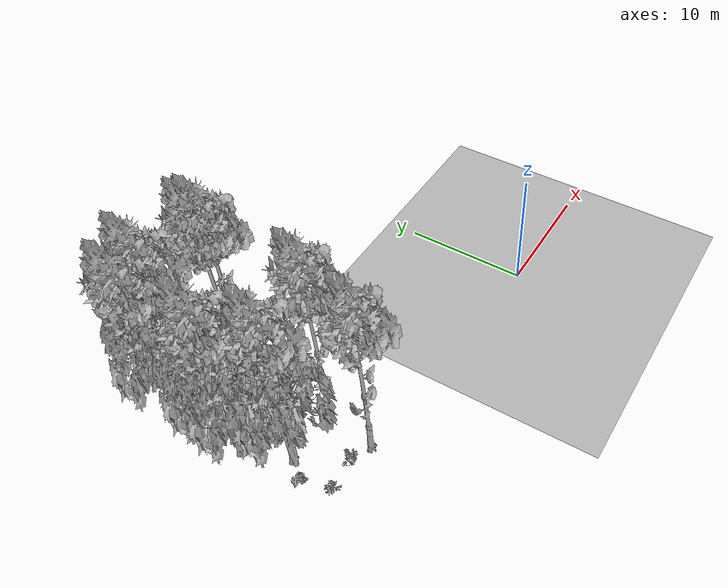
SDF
<sdf version="1.7">
 <world name="default">
  <model name="ground_plane">
   <static>1</static>
   <link name="link">
    <collision name="collision">
     <pose>-50 0 0 0 -0 0</pose>
     <geometry><plane><normal>0 0 1</normal><size>80 80</size></plane></geometry>
     <surface><contact><ode><min_depth>0.01</min_depth><max_vel>0</max_vel></ode></contact></surface>
    </collision>
    <visual name="grass">
     <cast_shadows>0</cast_shadows>
     <geometry>
      <mesh>
       <scale>0.46714285714285714 0.46714285714285714 0.1</scale>
       <uri>file://grass_plane/meshes/grass_plane.dae</uri>
      </mesh>
     </geometry>
    </visual>
   </link>
  </model>
  <model name="Tree 52">
   <static>1</static>
   <pose>-24.714791484448142 7.553677453470357 0 1.57079 -0 0</pose>
   <link name="link">
    <collision name="collision">
     <geometry><mesh><scale>3.5 5 3.5</scale><uri>model://tree_2/meshes/tree_2.obj</uri></mesh></geometry>
    </collision>
    <visual name="visual">
     <geometry><mesh><scale>3.5 5 3.5</scale><uri>model://tree_2/meshes/tree_2.obj</uri></mesh></geometry>
    </visual>
   </link>
  </model>
  <model name="Tree 88">
   <static>1</static>
   <pose>-24.508640064983393 14.888545816246861 0 1.57079 -0 0</pose>
   <link name="link">
    <collision name="collision">
     <geometry><mesh><scale>3.5 5 3.5</scale><uri>model://tree_9/meshes/tree_9.obj</uri></mesh></geometry>
    </collision>
    <visual name="visual">
     <geometry><mesh><scale>3.5 5 3.5</scale><uri>model://tree_9/meshes/tree_9.obj</uri></mesh></geometry>
    </visual>
   </link>
  </model>
  <model name="Tree 98">
   <static>1</static>
   <pose>-17.695097133960413 14.428805163919556 0 1.57079 -0 0</pose>
   <link name="link">
    <collision name="collision">
     <geometry><mesh><scale>3.5 5 3.5</scale><uri>model://tree_9/meshes/tree_9.obj</uri></mesh></geometry>
    </collision>
    <visual name="visual">
     <geometry><mesh><scale>3.5 5 3.5</scale><uri>model://tree_9/meshes/tree_9.obj</uri></mesh></geometry>
    </visual>
   </link>
  </model>
  <model name="Tree 255">
   <static>1</static>
   <pose>-23.138152905241846 5.744494449845597 0 1.57079 -0 0</pose>
   <link name="link">
    <collision name="collision">
     <geometry><mesh><scale>3.5 5 3.5</scale><uri>model://tree_9/meshes/tree_9.obj</uri></mesh></geometry>
    </collision>
    <visual name="visual">
     <geometry><mesh><scale>3.5 5 3.5</scale><uri>model://tree_9/meshes/tree_9.obj</uri></mesh></geometry>
    </visual>
   </link>
  </model>
  <model name="Tree 311">
   <static>1</static>
   <pose>-19.591139233166675 1.5883215922639948 0 1.57079 -0 0</pose>
   <link name="link">
    <collision name="collision">
     <geometry><mesh><scale>3.5 5 3.5</scale><uri>model://tree_9/meshes/tree_9.obj</uri></mesh></geometry>
    </collision>
    <visual name="visual">
     <geometry><mesh><scale>3.5 5 3.5</scale><uri>model://tree_9/meshes/tree_9.obj</uri></mesh></geometry>
    </visual>
   </link>
  </model>
  <model name="Tree 344">
   <static>1</static>
   <pose>-24.231429856006546 14.243412894183017 0 1.57079 -0 0</pose>
   <link name="link">
    <collision name="collision">
     <geometry><mesh><scale>3.5 5 3.5</scale><uri>model://tree_2/meshes/tree_2.obj</uri></mesh></geometry>
    </collision>
    <visual name="visual">
     <geometry><mesh><scale>3.5 5 3.5</scale><uri>model://tree_2/meshes/tree_2.obj</uri></mesh></geometry>
    </visual>
   </link>
  </model>
  <model name="Tree 396">
   <static>1</static>
   <pose>-22.289799391740534 15.744841560620188 0 1.57079 -0 0</pose>
   <link name="link">
    <collision name="collision">
     <geometry><mesh><scale>3.5 5 3.5</scale><uri>model://tree_9/meshes/tree_9.obj</uri></mesh></geometry>
    </collision>
    <visual name="visual">
     <geometry><mesh><scale>3.5 5 3.5</scale><uri>model://tree_9/meshes/tree_9.obj</uri></mesh></geometry>
    </visual>
   </link>
  </model>
  <model name="Tree 408">
   <static>1</static>
   <pose>-23.58908830686927 5.133252784444068 0 1.57079 -0 0</pose>
   <link name="link">
    <collision name="collision">
     <geometry><mesh><scale>3.5 5 3.5</scale><uri>model://tree_2/meshes/tree_2.obj</uri></mesh></geometry>
    </collision>
    <visual name="visual">
     <geometry><mesh><scale>3.5 5 3.5</scale><uri>model://tree_2/meshes/tree_2.obj</uri></mesh></geometry>
    </visual>
   </link>
  </model>
  <model name="Tree 461">
   <static>1</static>
   <pose>-18.188078313175648 14.757677055958148 0 1.57079 -0 0</pose>
   <link name="link">
    <collision name="collision">
     <geometry><mesh><scale>3.5 5 3.5</scale><uri>model://tree_9/meshes/tree_9.obj</uri></mesh></geometry>
    </collision>
    <visual name="visual">
     <geometry><mesh><scale>3.5 5 3.5</scale><uri>model://tree_9/meshes/tree_9.obj</uri></mesh></geometry>
    </visual>
   </link>
  </model>
  <model name="Tree 504">
   <static>1</static>
   <pose>-18.32092007344922 6.228896405349261 0 1.57079 -0 0</pose>
   <link name="link">
    <collision name="collision">
     <geometry><mesh><scale>3.5 5 3.5</scale><uri>model://tree_9/meshes/tree_9.obj</uri></mesh></geometry>
    </collision>
    <visual name="visual">
     <geometry><mesh><scale>3.5 5 3.5</scale><uri>model://tree_9/meshes/tree_9.obj</uri></mesh></geometry>
    </visual>
   </link>
  </model>
  <model name="Tree 510">
   <static>1</static>
   <pose>-24.470797747020537 9.306168764470115 0 1.57079 -0 0</pose>
   <link name="link">
    <collision name="collision">
     <geometry><mesh><scale>3.5 5 3.5</scale><uri>model://tree_9/meshes/tree_9.obj</uri></mesh></geometry>
    </collision>
    <visual name="visual">
     <geometry><mesh><scale>3.5 5 3.5</scale><uri>model://tree_9/meshes/tree_9.obj</uri></mesh></geometry>
    </visual>
   </link>
  </model>
  <model name="Tree 541">
   <static>1</static>
   <pose>-24.471788576916182 9.75119273528555 0 1.57079 -0 0</pose>
   <link name="link">
    <collision name="collision">
     <geometry><mesh><scale>3.5 5 3.5</scale><uri>model://tree_2/meshes/tree_2.obj</uri></mesh></geometry>
    </collision>
    <visual name="visual">
     <geometry><mesh><scale>3.5 5 3.5</scale><uri>model://tree_2/meshes/tree_2.obj</uri></mesh></geometry>
    </visual>
   </link>
  </model>
  <model name="Bush 43">
   <static>1</static>
   <pose>-20.925723218435255 16.67651986194757 0 1.57079 -0 0</pose>
   <link name="link">
    <collision name="collision">
     <geometry><mesh><scale>2 2 2</scale><uri>model://bush_1/meshes/bush_1.obj</uri></mesh></geometry>
     <surface><contact><collide_without_contact>false</collide_without_contact></contact></surface>
    </collision>
    <visual name="visual">
     <geometry><mesh><scale>2 2 2</scale><uri>model://bush_1/meshes/bush_1.obj</uri></mesh></geometry>
    </visual>
   </link>
  </model>
  <model name="Bush 149">
   <static>1</static>
   <pose>-18.587704788182528 11.511077140592612 0 1.57079 -0 0</pose>
   <link name="link">
    <collision name="collision">
     <geometry><mesh><scale>2 2 2</scale><uri>model://bush_2/meshes/bush_2.obj</uri></mesh></geometry>
     <surface><contact><collide_without_contact>false</collide_without_contact></contact></surface>
    </collision>
    <visual name="visual">
     <geometry><mesh><scale>2 2 2</scale><uri>model://bush_2/meshes/bush_2.obj</uri></mesh></geometry>
    </visual>
   </link>
  </model>
  <model name="Bush 194">
   <static>1</static>
   <pose>-21.512490349462208 1.8850596687707935 0 1.57079 -0 0</pose>
   <link name="link">
    <collision name="collision">
     <geometry><mesh><scale>2 2 2</scale><uri>model://bush_4/meshes/bush_4.obj</uri></mesh></geometry>
     <surface><contact><collide_without_contact>false</collide_without_contact></contact></surface>
    </collision>
    <visual name="visual">
     <geometry><mesh><scale>2 2 2</scale><uri>model://bush_4/meshes/bush_4.obj</uri></mesh></geometry>
    </visual>
   </link>
  </model>
  <model name="Bush 214">
   <static>1</static>
   <pose>-22.233162341132388 7.158994799693957 0 1.57079 -0 0</pose>
   <link name="link">
    <collision name="collision">
     <geometry><mesh><scale>2 2 2</scale><uri>model://bush_2/meshes/bush_2.obj</uri></mesh></geometry>
     <surface><contact><collide_without_contact>false</collide_without_contact></contact></surface>
    </collision>
    <visual name="visual">
     <geometry><mesh><scale>2 2 2</scale><uri>model://bush_2/meshes/bush_2.obj</uri></mesh></geometry>
    </visual>
   </link>
  </model>
  <model name="Bush 219">
   <static>1</static>
   <pose>-18.528838253018144 12.442755295426224 0 1.57079 -0 0</pose>
   <link name="link">
    <collision name="collision">
     <geometry><mesh><scale>2 2 2</scale><uri>model://bush_0/meshes/bush_0.obj</uri></mesh></geometry>
     <surface><contact><collide_without_contact>false</collide_without_contact></contact></surface>
    </collision>
    <visual name="visual">
     <geometry><mesh><scale>2 2 2</scale><uri>model://bush_0/meshes/bush_0.obj</uri></mesh></geometry>
    </visual>
   </link>
  </model>
  <model name="Bush 327">
   <static>1</static>
   <pose>-21.17973049412424 15.152383948171611 0 1.57079 -0 0</pose>
   <link name="link">
    <collision name="collision">
     <geometry><mesh><scale>2 2 2</scale><uri>model://bush_2/meshes/bush_2.obj</uri></mesh></geometry>
     <surface><contact><collide_without_contact>false</collide_without_contact></contact></surface>
    </collision>
    <visual name="visual">
     <geometry><mesh><scale>2 2 2</scale><uri>model://bush_2/meshes/bush_2.obj</uri></mesh></geometry>
    </visual>
   </link>
  </model>
  <model name="Bush 447">
   <static>1</static>
   <pose>-24.383447295630695 4.261440890761257 0 1.57079 -0 0</pose>
   <link name="link">
    <collision name="collision">
     <geometry><mesh><scale>2 2 2</scale><uri>model://bush_2/meshes/bush_2.obj</uri></mesh></geometry>
     <surface><contact><collide_without_contact>false</collide_without_contact></contact></surface>
    </collision>
    <visual name="visual">
     <geometry><mesh><scale>2 2 2</scale><uri>model://bush_2/meshes/bush_2.obj</uri></mesh></geometry>
    </visual>
   </link>
  </model>
  <model name="Bush 516">
   <static>1</static>
   <pose>-18.18392261679666 11.580854397546375 0 1.57079 -0 0</pose>
   <link name="link">
    <collision name="collision">
     <geometry><mesh><scale>2 2 2</scale><uri>model://bush_4/meshes/bush_4.obj</uri></mesh></geometry>
     <surface><contact><collide_without_contact>false</collide_without_contact></contact></surface>
    </collision>
    <visual name="visual">
     <geometry><mesh><scale>2 2 2</scale><uri>model://bush_4/meshes/bush_4.obj</uri></mesh></geometry>
    </visual>
   </link>
  </model>
  <model name="Bush 559">
   <static>1</static>
   <pose>-24.089965145494133 1.7175551681888237 0 1.57079 -0 0</pose>
   <link name="link">
    <collision name="collision">
     <geometry><mesh><scale>2 2 2</scale><uri>model://bush_5/meshes/bush_5.obj</uri></mesh></geometry>
     <surface><contact><collide_without_contact>false</collide_without_contact></contact></surface>
    </collision>
    <visual name="visual">
     <geometry><mesh><scale>2 2 2</scale><uri>model://bush_5/meshes/bush_5.obj</uri></mesh></geometry>
    </visual>
   </link>
  </model>
  <model name="Bush 587">
   <static>1</static>
   <pose>-17.197331500258564 8.744749154840399 0 1.57079 -0 0</pose>
   <link name="link">
    <collision name="collision">
     <geometry><mesh><scale>2 2 2</scale><uri>model://bush_2/meshes/bush_2.obj</uri></mesh></geometry>
     <surface><contact><collide_without_contact>false</collide_without_contact></contact></surface>
    </collision>
    <visual name="visual">
     <geometry><mesh><scale>2 2 2</scale><uri>model://bush_2/meshes/bush_2.obj</uri></mesh></geometry>
    </visual>
   </link>
  </model>
  <model name="Bush 607">
   <static>1</static>
   <pose>-20.22820164045527 7.409024566827512 0 1.57079 -0 0</pose>
   <link name="link">
    <collision name="collision">
     <geometry><mesh><scale>2 2 2</scale><uri>model://bush_2/meshes/bush_2.obj</uri></mesh></geometry>
     <surface><contact><collide_without_contact>false</collide_without_contact></contact></surface>
    </collision>
    <visual name="visual">
     <geometry><mesh><scale>2 2 2</scale><uri>model://bush_2/meshes/bush_2.obj</uri></mesh></geometry>
    </visual>
   </link>
  </model>
 </world>
</sdf>
